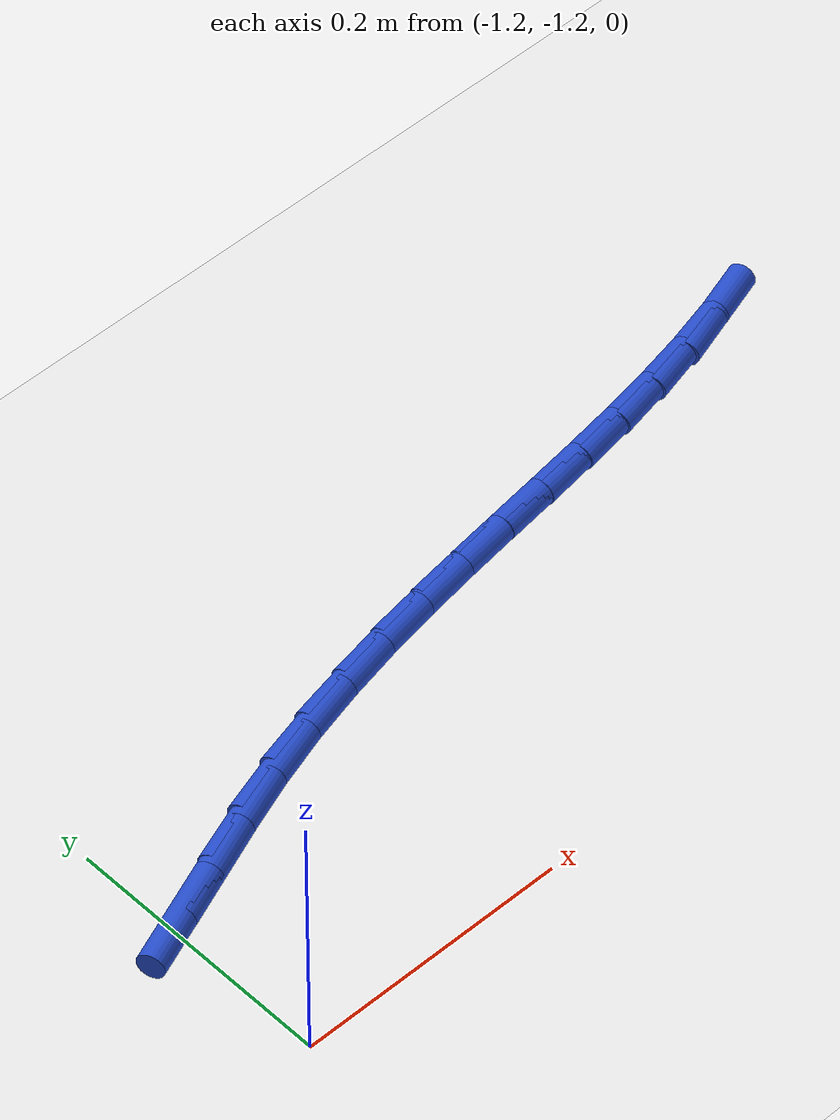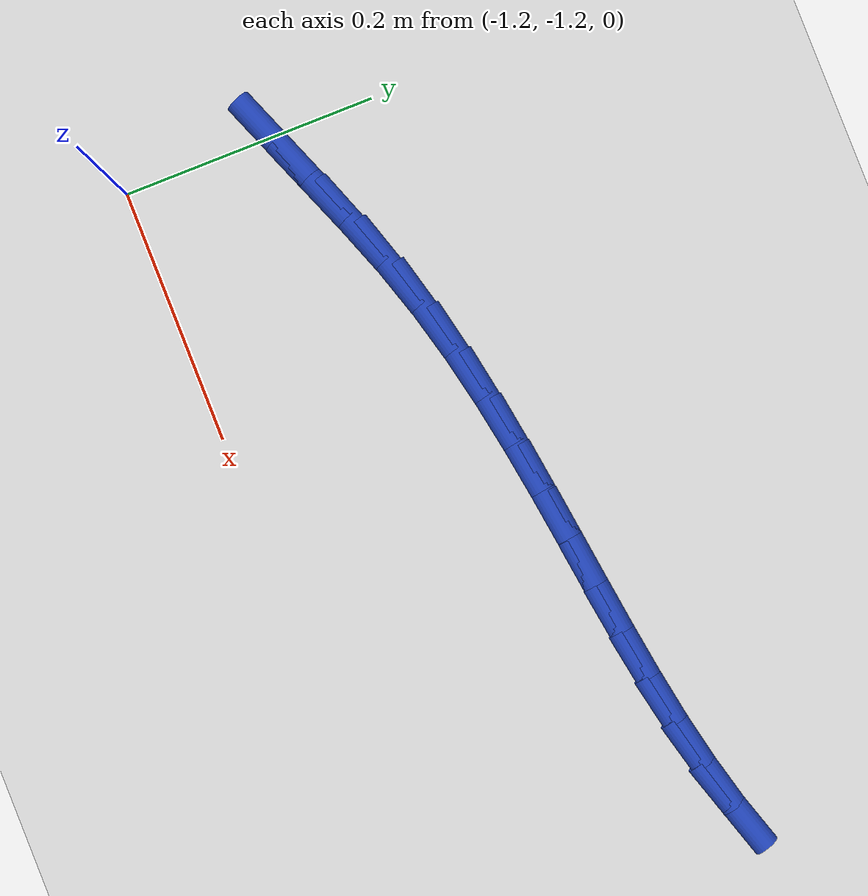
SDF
<sdf version="1.6">
 <world name="default">
  <model name="ground_plane">
   <static>1</static>
   <link name="link">
    <collision name="collision">
     <geometry><plane><normal>0 0 1</normal><size>100 100</size></plane></geometry>
     <surface><friction><ode><mu>100</mu><mu2>50</mu2></ode></friction></surface>
    </collision>
    <visual name="visual">
     <cast_shadows>0</cast_shadows>
     <geometry><plane><normal>0 0 1</normal><size>100 100</size></plane></geometry>
     <material>
      <script><uri>file://media/materials/scripts/gazebo.material</uri><name>Gazebo/WhiteGlow</name></script>
     </material>
    </visual>
   </link>
  </model>
  <model name="line">
   <link name="link_135">
    <pose>-1.195919904395065 -1.0805138467186033 0.01 0 1.57 0.3751390126420673</pose>
    <collision name="collision">
     <geometry><cylinder><radius>0.01</radius><length>0.08</length></cylinder></geometry>
    </collision>
    <visual name="visual">
     <material>
      <script><name>Gazebo/Blue</name><uri>file://media/materials/scripts/gazebo.material</uri></script>
     </material>
     <geometry><cylinder><radius>0.01</radius><length>0.08</length></cylinder></geometry>
    </visual>
   </link>
   <link name="link_136">
    <pose>-1.156554403879831 -1.0650122190042626 0.01 0 1.57 0.3775591627851678</pose>
    <collision name="collision">
     <geometry><cylinder><radius>0.01</radius><length>0.08</length></cylinder></geometry>
    </collision>
    <visual name="visual">
     <material>
      <script><name>Gazebo/Blue</name><uri>file://media/materials/scripts/gazebo.material</uri></script>
     </material>
     <geometry><cylinder><radius>0.01</radius><length>0.08</length></cylinder></geometry>
    </visual>
   </link>
   <link name="link_137">
    <pose>-1.116698245158248 -1.0492058544493268 0.01 0 1.57 0.35322326398683995</pose>
    <collision name="collision">
     <geometry><cylinder><radius>0.01</radius><length>0.08</length></cylinder></geometry>
    </collision>
    <visual name="visual">
     <material>
      <script><name>Gazebo/Blue</name><uri>file://media/materials/scripts/gazebo.material</uri></script>
     </material>
     <geometry><cylinder><radius>0.01</radius><length>0.08</length></cylinder></geometry>
    </visual>
   </link>
   <link name="link_138">
    <pose>-1.07649088031988 -1.034381979598835 0.01 0 1.57 0.3045683703393457</pose>
    <collision name="collision">
     <geometry><cylinder><radius>0.01</radius><length>0.08</length></cylinder></geometry>
    </collision>
    <visual name="visual">
     <material>
      <script><name>Gazebo/Blue</name><uri>file://media/materials/scripts/gazebo.material</uri></script>
     </material>
     <geometry><cylinder><radius>0.01</radius><length>0.08</length></cylinder></geometry>
    </visual>
   </link>
   <link name="link_139">
    <pose>-1.0360673642044484 -1.0216748925464887 0.01 0 1.57 0.25386910976461763</pose>
    <collision name="collision">
     <geometry><cylinder><radius>0.01</radius><length>0.08</length></cylinder></geometry>
    </collision>
    <visual name="visual">
     <material>
      <script><name>Gazebo/Blue</name><uri>file://media/materials/scripts/gazebo.material</uri></script>
     </material>
     <geometry><cylinder><radius>0.01</radius><length>0.08</length></cylinder></geometry>
    </visual>
   </link>
   <link name="link_140">
    <pose>-0.9955322283735 -1.0111573465955253 0.01 0 1.57 0.21144777706005044</pose>
    <collision name="collision">
     <geometry><cylinder><radius>0.01</radius><length>0.08</length></cylinder></geometry>
    </collision>
    <visual name="visual">
     <material>
      <script><name>Gazebo/Blue</name><uri>file://media/materials/scripts/gazebo.material</uri></script>
     </material>
     <geometry><cylinder><radius>0.01</radius><length>0.08</length></cylinder></geometry>
    </visual>
   </link>
   <link name="link_141">
    <pose>-0.9549770601499019 -1.002451917677756 0.01 0 1.57 0.17774134827602073</pose>
    <collision name="collision">
     <geometry><cylinder><radius>0.01</radius><length>0.08</length></cylinder></geometry>
    </collision>
    <visual name="visual">
     <material>
      <script><name>Gazebo/Blue</name><uri>file://media/materials/scripts/gazebo.material</uri></script>
     </material>
     <geometry><cylinder><radius>0.01</radius><length>0.08</length></cylinder></geometry>
    </visual>
   </link>
   <link name="link_142">
    <pose>-0.9144934000173582 -0.995179552743038 0.01 0 1.57 0.15301715766401758</pose>
    <collision name="collision">
     <geometry><cylinder><radius>0.01</radius><length>0.08</length></cylinder></geometry>
    </collision>
    <visual name="visual">
     <material>
      <script><name>Gazebo/Blue</name><uri>file://media/materials/scripts/gazebo.material</uri></script>
     </material>
     <geometry><cylinder><radius>0.01</radius><length>0.08</length></cylinder></geometry>
    </visual>
   </link>
   <link name="link_143">
    <pose>-0.8741727884595757 -0.9889611987412287 0.01 0 1.57 0.1374837085874862</pose>
    <collision name="collision">
     <geometry><cylinder><radius>0.01</radius><length>0.08</length></cylinder></geometry>
    </collision>
    <visual name="visual">
     <material>
      <script><name>Gazebo/Blue</name><uri>file://media/materials/scripts/gazebo.material</uri></script>
     </material>
     <geometry><cylinder><radius>0.01</radius><length>0.08</length></cylinder></geometry>
    </visual>
   </link>
   <link name="link_144">
    <pose>-0.8341067659602575 -0.9834178026221846 0.01 0 1.57 0.1313517562532196</pose>
    <collision name="collision">
     <geometry><cylinder><radius>0.01</radius><length>0.08</length></cylinder></geometry>
    </collision>
    <visual name="visual">
     <material>
      <script><name>Gazebo/Blue</name><uri>file://media/materials/scripts/gazebo.material</uri></script>
     </material>
     <geometry><cylinder><radius>0.01</radius><length>0.08</length></cylinder></geometry>
    </visual>
   </link>
   <link name="link_145">
    <pose>-0.794386873003109 -0.9781703113357632 0.01 0 1.57 0.13487718104871937</pose>
    <collision name="collision">
     <geometry><cylinder><radius>0.01</radius><length>0.08</length></cylinder></geometry>
    </collision>
    <visual name="visual">
     <material>
      <script><name>Gazebo/Blue</name><uri>file://media/materials/scripts/gazebo.material</uri></script>
     </material>
     <geometry><cylinder><radius>0.01</radius><length>0.08</length></cylinder></geometry>
    </visual>
   </link>
   <link name="link_146">
    <pose>-0.7551046500718346 -0.972839671831822 0.01 0 1.57 0.14838237300146118</pose>
    <collision name="collision">
     <geometry><cylinder><radius>0.01</radius><length>0.08</length></cylinder></geometry>
    </collision>
    <visual name="visual">
     <material>
      <script><name>Gazebo/Blue</name><uri>file://media/materials/scripts/gazebo.material</uri></script>
     </material>
     <geometry><cylinder><radius>0.01</radius><length>0.08</length></cylinder></geometry>
    </visual>
   </link>
   <link name="link_147">
    <pose>-0.7163516376501391 -0.9670468310602175 0.01 0 1.57 0.17225184004450345</pose>
    <collision name="collision">
     <geometry><cylinder><radius>0.01</radius><length>0.08</length></cylinder></geometry>
    </collision>
    <visual name="visual">
     <material>
      <script><name>Gazebo/Blue</name><uri>file://media/materials/scripts/gazebo.material</uri></script>
     </material>
     <geometry><cylinder><radius>0.01</radius><length>0.08</length></cylinder></geometry>
    </visual>
   </link>
   <link name="link_148">
    <pose>-0.6782193762217266 -0.9604127359708071 0.01 0 1.57 0.2068951557967713</pose>
    <collision name="collision">
     <geometry><cylinder><radius>0.01</radius><length>0.08</length></cylinder></geometry>
    </collision>
    <visual name="visual">
     <material>
      <script><name>Gazebo/Blue</name><uri>file://media/materials/scripts/gazebo.material</uri></script>
     </material>
     <geometry><cylinder><radius>0.01</radius><length>0.08</length></cylinder></geometry>
    </visual>
   </link>
   <link name="link_149">
    <pose>-0.6407994062703033 -0.9525583335134488 0.01 0 1.57 0.25266788093302806</pose>
    <collision name="collision">
     <geometry><cylinder><radius>0.01</radius><length>0.08</length></cylinder></geometry>
    </collision>
    <visual name="visual">
     <material>
      <script><name>Gazebo/Blue</name><uri>file://media/materials/scripts/gazebo.material</uri></script>
     </material>
     <geometry><cylinder><radius>0.01</radius><length>0.08</length></cylinder></geometry>
    </visual>
   </link>
   <link name="link_150">
    <pose>-0.6041832682795731 -0.9431045706379985 0.01 0 1.57 0.3097418324382149</pose>
    <collision name="collision">
     <geometry><cylinder><radius>0.01</radius><length>0.08</length></cylinder></geometry>
    </collision>
    <visual name="visual">
     <material>
      <script><name>Gazebo/Blue</name><uri>file://media/materials/scripts/gazebo.material</uri></script>
     </material>
     <geometry><cylinder><radius>0.01</radius><length>0.08</length></cylinder></geometry>
    </visual>
   </link>
  </model>
 </world>
</sdf>
